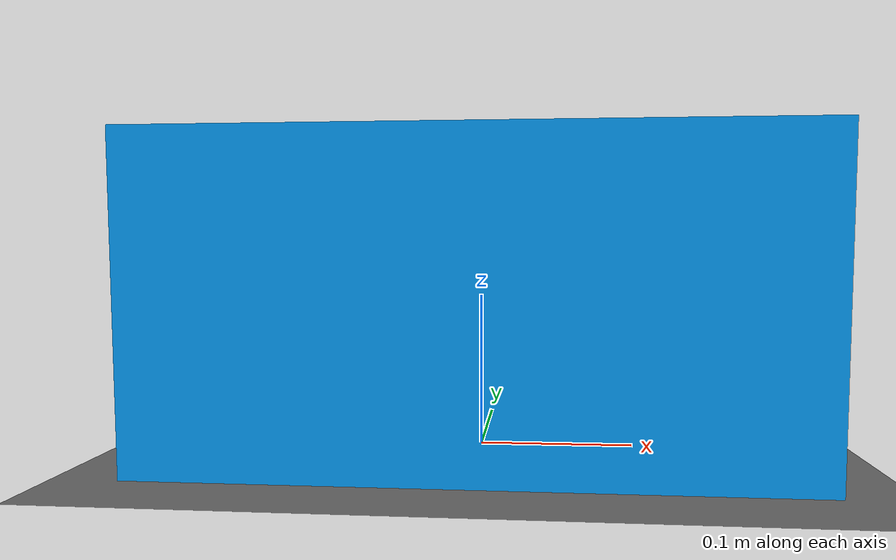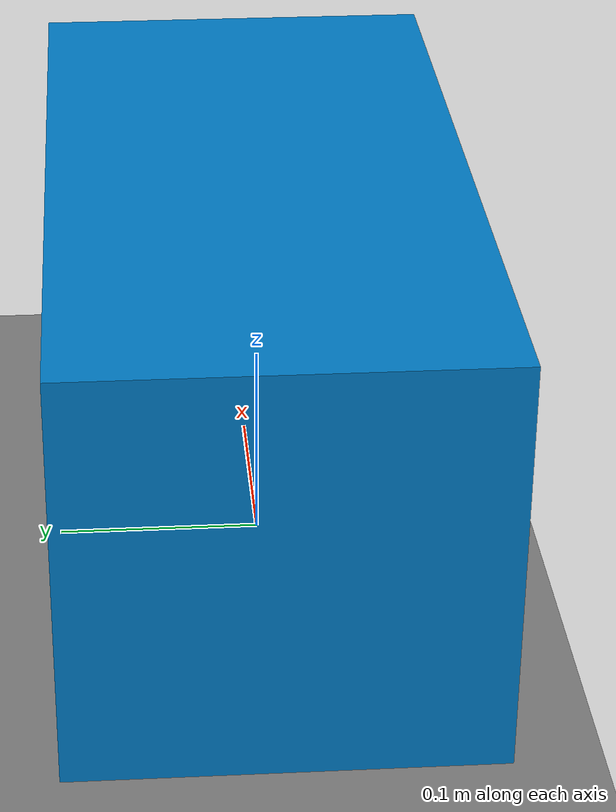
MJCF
<mujoco>
  <worldbody>
    <light diffuse="0.5 0.5 0.5" pos="0 0 5" dir="0 0 -1"/>

    <geom name="ground" type="plane" size="5 5 0.1" pos="0 0 0"
          rgba="0.5 0.5 0.5 1" solimp="0.9 0.95 0.001" solref="0.02 1"/>

    <body name="slider" pos="0 0 0.1">
      <joint name="slide_joint" type="slide" axis="1 0 0" damping="0.2" range="-2 2"/>
      <geom type="box" size="0.2 0.1 0.1" rgba="0 0.5 0.8 1" mass="0.5" />
    </body>
  </worldbody>

  <actuator>
    <position name="position" joint="slide_joint" kp="100" kv="10"/>
  </actuator>
</mujoco>
